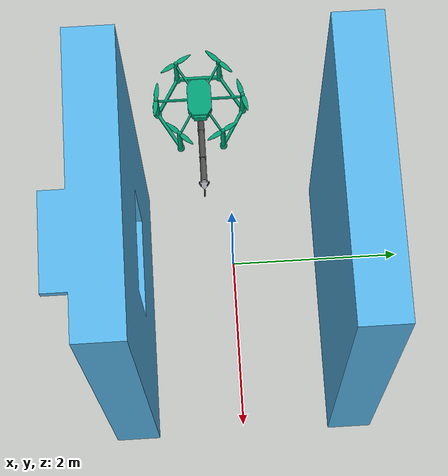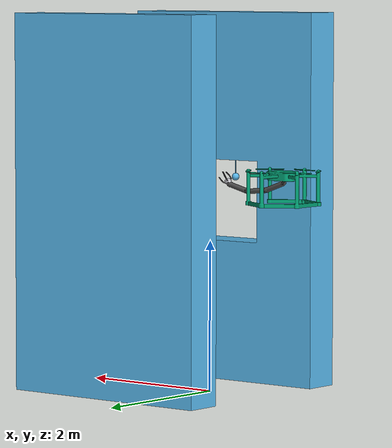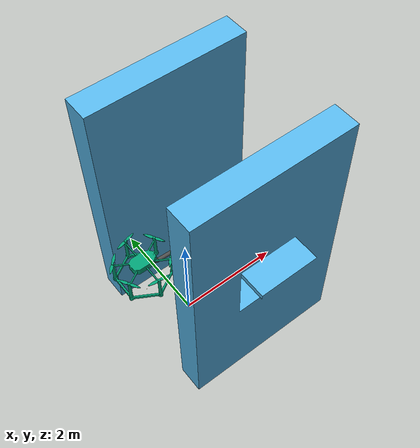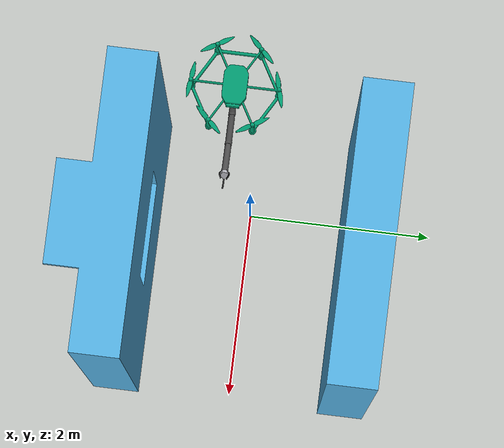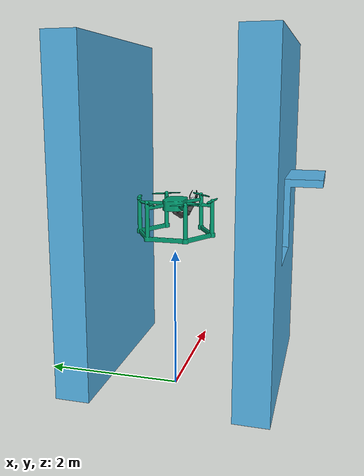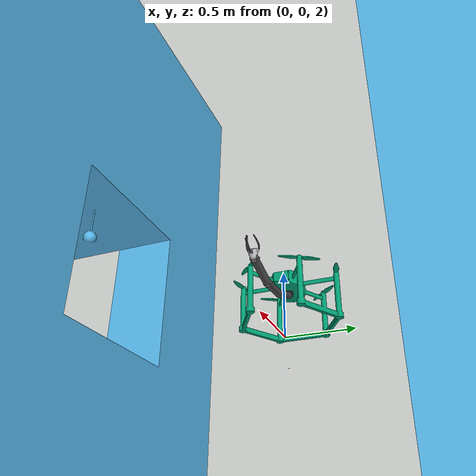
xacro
<?xml version="1.0" ?>
<robot name="full" xmlns:xacro="http://www.ros.org/wiki/xacro">

<link name="world"/>

<joint name="base_joint" type="prismatic">
  <parent link="world"/>
  <child link="slider_v1_1"/>
  <origin rpy="0 0 0" xyz="-1.0 -0.3 2.1"/>
  <axis xyz="1.0 0.0 0.0"/>
  <limit upper="3" lower="-3" effort="100" velocity="100"/>
</joint>

<link name="orchard_v4_1">
  <inertial>
    <origin xyz="-0.0021897602804135186 0.00938123492456427 0.2722887983118014" rpy="0 0 0"/>
    <mass value="181.4435964250298"/>
    <inertia ixx="0.0" iyy="0.0" izz="0.0" ixy="0.0" iyz="0.0" ixz="0.0"/>
  </inertial>
  <visual>
    <origin xyz="0 0 0" rpy="0 0 0"/>
    <geometry>
      <mesh filename="package://full_description/meshes/orchard_v4_1.stl" scale="0.001 0.001 0.001"/>
    </geometry>
    <material name="steel_satin"/>
  </visual>
  <collision>
    <origin xyz="0 0 0" rpy="0 0 0"/>
    <geometry>
      <mesh filename="package://full_description/meshes/orchard_v4_1.stl" scale="0.001 0.001 0.001"/>
    </geometry>
  </collision>
</link>

<joint name="root" type="fixed">
  <parent link="world"/>
  <child link="orchard_v4_1"/>
  <origin rpy="0 0 0" xyz="0.0 0.0 0.0"/>
</joint>

<link name="base_link">
  <inertial>
    <origin xyz="-0.0021897602804135186 0.00938123492456427 0.2722887983118014" rpy="0 0 0"/>
    <mass value="181.4435964250298"/>
    <inertia ixx="0.0" iyy="0.0" izz="0.0" ixy="0.0" iyz="0.0" ixz="0.0"/>
  </inertial>
  <visual>
    <origin xyz="0 0 0" rpy="0 0 0"/>
    <geometry>
      <mesh filename="package://full_description/meshes/base_link.stl" scale="0.001 0.001 0.001"/>
    </geometry>
    <material name="steel_satin"/>
  </visual>
  <collision>
    <origin xyz="0 0 0" rpy="0 0 0"/>
    <geometry>
      <mesh filename="package://full_description/meshes/base_link.stl" scale="0.001 0.001 0.001"/>
    </geometry>
  </collision>
</link>

<link name="arm_base_v7_1">
  <inertial>
    <origin xyz="-1.5639344419157708e-07 1.3067887084938778e-08 -0.014601256634869109" rpy="0 0 0"/>
    <mass value="0.8016618792376357"/>
    <inertia ixx="0.0" iyy="0.0" izz="0.0" ixy="0.0" iyz="0.0" ixz="0.0"/>
  </inertial>
  <visual>
    <origin xyz="0.001221 -0.0105 -0.30205" rpy="0 0 0"/>
    <geometry>
      <mesh filename="package://full_description/meshes/arm_base_v7_1.stl" scale="0.001 0.001 0.001"/>
    </geometry>
    <material name="paint_metallic_black"/>
  </visual>
  <collision>
    <origin xyz="0.001221 -0.0105 -0.30205" rpy="0 0 0"/>
    <geometry>
      <mesh filename="package://full_description/meshes/arm_base_v7_1.stl" scale="0.001 0.001 0.001"/>
    </geometry>
  </collision>
</link>

<link name="Arm1_v5_1">
  <inertial>
    <origin xyz="0.13971252114810737 0.02594609213826877 -0.05085123617571785" rpy="0 0 0"/>
    <mass value="8.514667585337152"/>
    <inertia ixx="0.0" iyy="0.0" izz="0.0" ixy="0.0" iyz="0.0" ixz="0.0"/>
  </inertial>
  <visual>
    <origin xyz="0.001221 0.015447 -0.26705" rpy="0 0 0"/>
    <geometry>
      <mesh filename="package://full_description/meshes/Arm1_v5_1.stl" scale="0.001 0.001 0.001"/>
    </geometry>
    <material name="paint_metallic_dark_grey"/>
  </visual>
  <collision>
    <origin xyz="0.001221 0.015447 -0.26705" rpy="0 0 0"/>
    <geometry>
      <mesh filename="package://full_description/meshes/Arm1_v5_1.stl" scale="0.001 0.001 0.001"/>
    </geometry>
  </collision>
</link>

<link name="Arm1_v5_2">
  <inertial>
    <origin xyz="0.14811317899671678 0.025945812138268465 -0.01295853300668337" rpy="0 0 0"/>
    <mass value="8.514667585337152"/>
    <inertia ixx="0.0" iyy="0.0" izz="0.0" ixy="0.0" iyz="0.0" ixz="0.0"/>
  </inertial>
  <visual>
    <origin xyz="-0.289397 0.015447 -0.161274" rpy="0 0 0"/>
    <geometry>
      <mesh filename="package://full_description/meshes/Arm1_v5_2.stl" scale="0.001 0.001 0.001"/>
    </geometry>
    <material name="paint_metallic_dark_grey"/>
  </visual>
  <collision>
    <origin xyz="-0.289397 0.015447 -0.161274" rpy="0 0 0"/>
    <geometry>
      <mesh filename="package://full_description/meshes/Arm1_v5_2.stl" scale="0.001 0.001 0.001"/>
    </geometry>
  </collision>
</link>

<link name="Arm1_v5_3">
  <inertial>
    <origin xyz="0.14361316662252388 0.025945532138268133 0.03848108504601028" rpy="0 0 0"/>
    <mass value="8.514667585337152"/>
    <inertia ixx="0.0" iyy="0.0" izz="0.0" ixy="0.0" iyz="0.0" ixz="0.0"/>
  </inertial>
  <visual>
    <origin xyz="-0.597489 0.015447 -0.134319" rpy="0 0 0"/>
    <geometry>
      <mesh filename="package://full_description/meshes/Arm1_v5_3.stl" scale="0.001 0.001 0.001"/>
    </geometry>
    <material name="paint_metallic_dark_grey"/>
  </visual>
  <collision>
    <origin xyz="-0.597489 0.015447 -0.134319" rpy="0 0 0"/>
    <geometry>
      <mesh filename="package://full_description/meshes/Arm1_v5_3.stl" scale="0.001 0.001 0.001"/>
    </geometry>
  </collision>
</link>

<link name="GripperBase_v8_1">
  <inertial>
    <origin xyz="0.0203376847518143 -0.02505525478109976 0.029044629140177802" rpy="0 0 0"/>
    <mass value="2.504922868632019"/>
    <inertia ixx="0.0" iyy="0.0" izz="0.0" ixy="0.0" iyz="0.0" ixz="0.0"/>
  </inertial>
  <visual>
    <origin xyz="-0.89622 -0.036446 -0.214364" rpy="0 0 0"/>
    <geometry>
      <mesh filename="package://full_description/meshes/GripperBase_v8_1.stl" scale="0.001 0.001 0.001"/>
    </geometry>
    <material name="paint_metallic_silver"/>
  </visual>
  <collision>
    <origin xyz="-0.89622 -0.036446 -0.214364" rpy="0 0 0"/>
    <geometry>
      <mesh filename="package://full_description/meshes/GripperBase_v8_1.stl" scale="0.001 0.001 0.001"/>
    </geometry>
  </collision>
</link>

<link name="Klo_v6_1">
  <inertial>
    <origin xyz="0.05073537239496895 -0.007836410105433114 0.013814515193589672" rpy="0 0 0"/>
    <mass value="0.15649518536515106"/>
    <inertia ixx="0.0" iyy="0.0" izz="0.0" ixy="0.0" iyz="0.0" ixz="0.0"/>
  </inertial>
  <visual>
    <origin xyz="-0.961655 -0.019459 -0.235077" rpy="0 0 0"/>
    <geometry>
      <mesh filename="package://full_description/meshes/Klo_v6_1.stl" scale="0.001 0.001 0.001"/>
    </geometry>
    <material name="paint_metallic_black"/>
  </visual>
  <collision>
    <origin xyz="-0.961655 -0.019459 -0.235077" rpy="0 0 0"/>
    <geometry>
      <mesh filename="package://full_description/meshes/Klo_v6_1.stl" scale="0.001 0.001 0.001"/>
    </geometry>
  </collision>
</link>

<link name="Klo_v6_2">
  <inertial>
    <origin xyz="0.03167039990975096 0.0116061898122189 0.04113510807200471" rpy="0 0 0"/>
    <mass value="0.15649518536515106"/>
    <inertia ixx="0.0" iyy="0.0" izz="0.0" ixy="0.0" iyz="0.0" ixz="0.0"/>
  </inertial>
  <visual>
    <origin xyz="-0.90483 -0.04383 -0.274866" rpy="0 0 0"/>
    <geometry>
      <mesh filename="package://full_description/meshes/Klo_v6_2.stl" scale="0.001 0.001 0.001"/>
    </geometry>
    <material name="paint_metallic_black"/>
  </visual>
  <collision>
    <origin xyz="-0.90483 -0.04383 -0.274866" rpy="0 0 0"/>
    <geometry>
      <mesh filename="package://full_description/meshes/Klo_v6_2.stl" scale="0.001 0.001 0.001"/>
    </geometry>
  </collision>
</link>

<link name="Klo_v6_3">
  <inertial>
    <origin xyz="0.02050911439567349 -0.003808243214495393 0.04890049028098836" rpy="0 0 0"/>
    <mass value="0.15649518536515106"/>
    <inertia ixx="0.0" iyy="0.0" izz="0.0" ixy="0.0" iyz="0.0" ixz="0.0"/>
  </inertial>
  <visual>
    <origin xyz="-0.915954 0.028431 -0.267077" rpy="0 0 0"/>
    <geometry>
      <mesh filename="package://full_description/meshes/Klo_v6_3.stl" scale="0.001 0.001 0.001"/>
    </geometry>
    <material name="paint_metallic_black"/>
  </visual>
  <collision>
    <origin xyz="-0.915954 0.028431 -0.267077" rpy="0 0 0"/>
    <geometry>
      <mesh filename="package://full_description/meshes/Klo_v6_3.stl" scale="0.001 0.001 0.001"/>
    </geometry>
  </collision>
</link>

<link name="slider_v1_1">
  <inertial>
    <origin xyz="-8.76553355728775e-08 -2.0816681711721685e-17 0.0005000000000000004" rpy="0 0 0"/>
    <mass value="0.0006165375582670231"/>
    <inertia ixx="0.0" iyy="0.0" izz="0.0" ixy="0.0" iyz="0.0" ixz="0.0"/>
  </inertial>
  <visual>
    <origin xyz="0.001221 -0.0105 -0.42445" rpy="0 0 0"/>
    <geometry>
      <mesh filename="package://full_description/meshes/slider_v1_1.stl" scale="0.001 0.001 0.001"/>
    </geometry>
    <material name="steel_satin"/>
  </visual>
  <collision>
    <origin xyz="0.001221 -0.0105 -0.42445" rpy="0 0 0"/>
    <geometry>
      <mesh filename="package://full_description/meshes/slider_v1_1.stl" scale="0.001 0.001 0.001"/>
    </geometry>
  </collision>
</link>

<joint name="Rigid7" type="fixed">
  <origin xyz="-0.001221 0.0105 0.30205" rpy="0 0 0"/>
  <parent link="base_link"/>
  <child link="arm_base_v7_1"/>
</joint>

<joint name="Rev8" type="revolute">
  <origin xyz="0.0 -0.025947 -0.035" rpy="0 0 0"/>
  <parent link="arm_base_v7_1"/>
  <child link="Arm1_v5_1"/>
  <axis xyz="0.0 1.0 -0.0"/>
  <limit upper="1.22173" lower="-1.22173" effort="100" velocity="100"/>
</joint>

<joint name="Rev9" type="revolute">
  <origin xyz="0.290618 0.0 -0.105776" rpy="0 0 0"/>
  <parent link="Arm1_v5_1"/>
  <child link="Arm1_v5_2"/>
  <axis xyz="0.0 1.0 -0.0"/>
  <limit upper="1.22173" lower="-1.22173" effort="100" velocity="100"/>
</joint>

<joint name="Rev10" type="revolute">
  <origin xyz="0.308092 0.0 -0.026955" rpy="0 0 0"/>
  <parent link="Arm1_v5_2"/>
  <child link="Arm1_v5_3"/>
  <axis xyz="0.0 1.0 -0.0"/>
  <limit upper="1.22173" lower="-1.22173" effort="100" velocity="100"/>
</joint>

<joint name="Rev11" type="revolute">
  <origin xyz="0.298731 0.051893 0.080045" rpy="0 0 0"/>
  <parent link="Arm1_v5_3"/>
  <child link="GripperBase_v8_1"/>
  <axis xyz="-0.0 -1.0 0.0"/>
  <limit upper="1.22173" lower="-1.22173" effort="100" velocity="100"/>
</joint>

<joint name="Rev12" type="revolute">
  <origin xyz="0.065435 -0.016987 0.020713" rpy="0 0 0"/>
  <parent link="GripperBase_v8_1"/>
  <child link="Klo_v6_1"/>
  <axis xyz="-0.0 -1.0 0.0"/>
  <limit upper="0.5" lower="-0.785398" effort="100" velocity="100"/>
</joint>

<joint name="Rev13" type="revolute">
  <origin xyz="0.00861 0.007384 0.060502" rpy="0 0 0"/>
  <parent link="GripperBase_v8_1"/>
  <child link="Klo_v6_2"/>
  <axis xyz="0.709406 0.5 -0.496732"/>
  <limit upper="0.5" lower="-1.134464" effort="100" velocity="100"/>
</joint>

<joint name="Rev14" type="revolute">
  <origin xyz="0.019734 -0.064877 0.052713" rpy="0 0 0"/>
  <parent link="GripperBase_v8_1"/>
  <child link="Klo_v6_3"/>
  <axis xyz="-0.709406 0.5 0.496732"/>
  <limit upper="0.5" lower="-1.22173" effort="100" velocity="100"/>
</joint>

<joint name="Rev15" type="continuous">
  <origin xyz="-0.001221 0.0105 0.42445" rpy="0 0 0"/>
  <parent link="slider_v1_1"/>
  <child link="base_link"/>
  <axis xyz="0.0 0.0 1.0"/>
</joint>

<transmission name="slider_v1_1_trans">
  <type>transmission_interface/SimpleTransmission</type>
  <joint name="base_joint">

  <hardwareInterface>hardware_interface/PositionJointInterface</hardwareInterface>
  </joint>
  <actuator name="slider_v1_1_motor">

  <hardwareInterface>hardware_interface/PositionJointInterface</hardwareInterface>
    <mechanicalReduction>1</mechanicalReduction>
  </actuator>
</transmission>

<transmission name="base_link_trans">
  <type>transmission_interface/SimpleTransmission</type>
  <joint name="Rev15">

  <hardwareInterface>hardware_interface/PositionJointInterface</hardwareInterface>
  </joint>
  <actuator name="base_link_motor">

  <hardwareInterface>hardware_interface/PositionJointInterface</hardwareInterface>
    <mechanicalReduction>1</mechanicalReduction>
  </actuator>
</transmission>

<transmission name="arm1_v5_1_trans">
  <type>transmission_interface/SimpleTransmission</type>
  <joint name="Rev8">

  <hardwareInterface>hardware_interface/PositionJointInterface</hardwareInterface>
  </joint>
  <actuator name="arm1_v5_1_motor">

  <hardwareInterface>hardware_interface/PositionJointInterface</hardwareInterface>
    <mechanicalReduction>1</mechanicalReduction>
  </actuator>
</transmission>

<transmission name="arm1_v5_2_trans">
  <type>transmission_interface/SimpleTransmission</type>
  <joint name="Rev9">

  <hardwareInterface>hardware_interface/PositionJointInterface</hardwareInterface>
  </joint>
  <actuator name="arm1_v5_2_motor">

  <hardwareInterface>hardware_interface/PositionJointInterface</hardwareInterface>
    <mechanicalReduction>1</mechanicalReduction>
  </actuator>
</transmission>

<transmission name="arm1_v5_3_trans">
  <type>transmission_interface/SimpleTransmission</type>
  <joint name="Rev10">

  <hardwareInterface>hardware_interface/PositionJointInterface</hardwareInterface>
  </joint>
  <actuator name="arm1_v5_3_motor">

  <hardwareInterface>hardware_interface/PositionJointInterface</hardwareInterface>
    <mechanicalReduction>1</mechanicalReduction>
  </actuator>
</transmission>

<transmission name="GripperBase_v8_1_trans">
  <type>transmission_interface/SimpleTransmission</type>
  <joint name="Rev11">

  <hardwareInterface>hardware_interface/PositionJointInterface</hardwareInterface>
  </joint>
  <actuator name="GripperBase_v8_1_motor">

  <hardwareInterface>hardware_interface/PositionJointInterface</hardwareInterface>
    <mechanicalReduction>1</mechanicalReduction>
  </actuator>
</transmission>

<transmission name="Klo_v6_1_trans">
  <type>transmission_interface/SimpleTransmission</type>
  <joint name="Rev12">

  <hardwareInterface>hardware_interface/PositionJointInterface</hardwareInterface>
  </joint>
  <actuator name="Klo_v6_1_motor">

  <hardwareInterface>hardware_interface/PositionJointInterface</hardwareInterface>
    <mechanicalReduction>1</mechanicalReduction>
  </actuator>
</transmission>

<transmission name="Klo_v6_2_trans">
  <type>transmission_interface/SimpleTransmission</type>
  <joint name="Rev13">

  <hardwareInterface>hardware_interface/PositionJointInterface</hardwareInterface>
  </joint>
  <actuator name="Klo_v6_2_motor">

  <hardwareInterface>hardware_interface/PositionJointInterface</hardwareInterface>
    <mechanicalReduction>1</mechanicalReduction>
  </actuator>
</transmission>

<transmission name="Klo_v6_3_trans">
  <type>transmission_interface/SimpleTransmission</type>
  <joint name="Rev14">

  <hardwareInterface>hardware_interface/PositionJointInterface</hardwareInterface>
  </joint>
  <actuator name="Klo_v6_3_motor">

  <hardwareInterface>hardware_interface/PositionJointInterface</hardwareInterface>
    <mechanicalReduction>1</mechanicalReduction>
  </actuator>
</transmission>

<gazebo>
  <plugin name="control"
filename="libgazebo_ros_control.so">
    <robotNamespace>/</robotNamespace>
  </plugin>
</gazebo>

<gazebo reference="base_link">
  <selfCollide>true</selfCollide>
</gazebo>

<gazebo reference="arm1_v5_1">
  <selfCollide>true</selfCollide>
</gazebo>

<gazebo reference="arm1_v5_2">
  <selfCollide>true</selfCollide>
</gazebo>

<gazebo reference="arm1_v5_3">
  <selfCollide>true</selfCollide>
</gazebo>

<gazebo reference="GripperBase_v8_1">
  <selfCollide>true</selfCollide>
</gazebo>

<gazebo reference="Klo_v6_1">
  <selfCollide>true</selfCollide>
</gazebo>

<gazebo reference="Klo_v6_2">
  <selfCollide>true</selfCollide>
</gazebo>

<gazebo reference="Klo_v6_3">
  <selfCollide>true</selfCollide>
</gazebo>

</robot>
